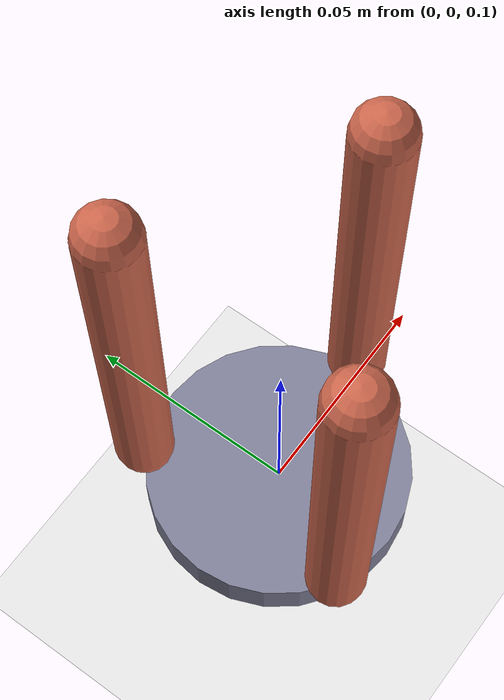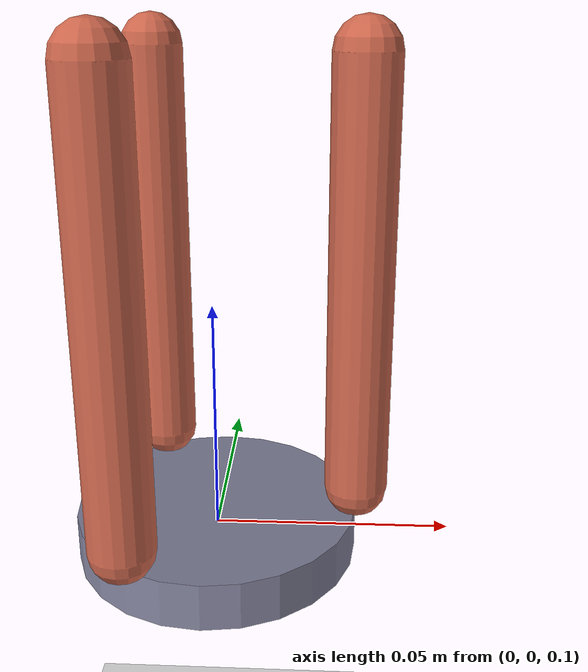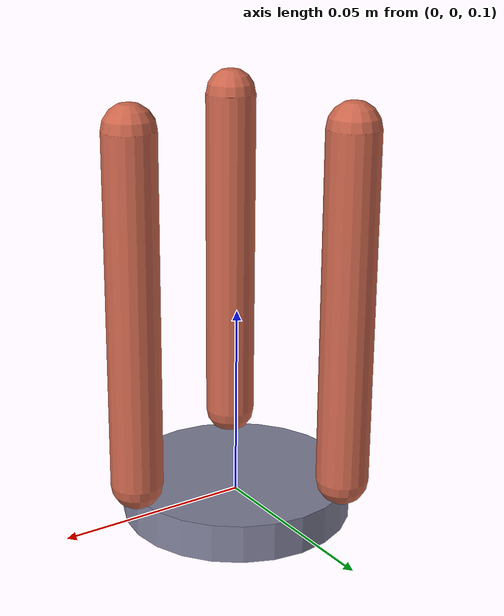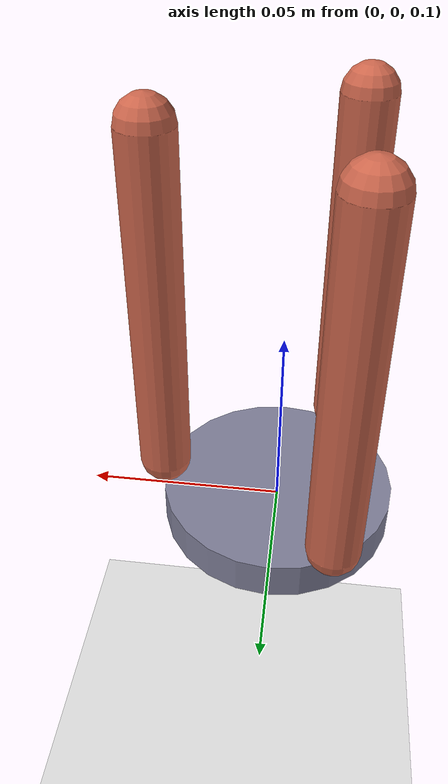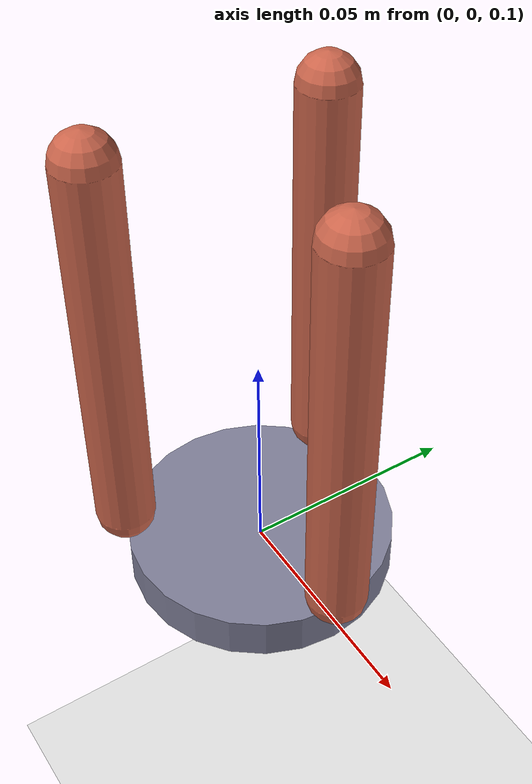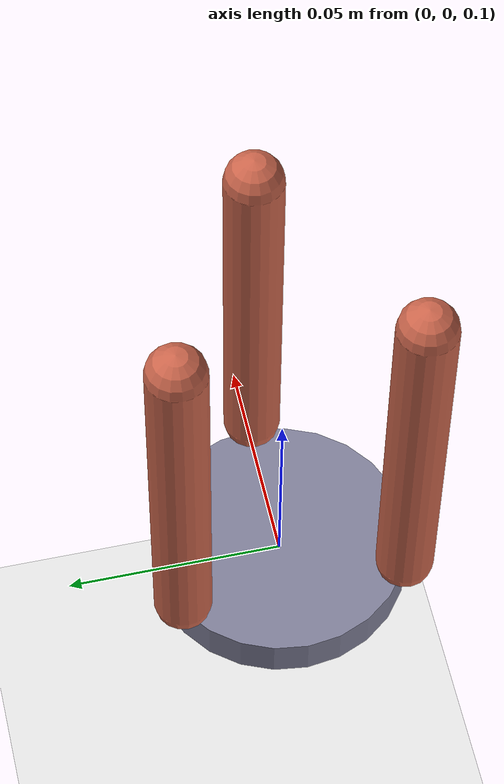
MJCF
<?xml version="1.0" encoding="utf-8"?>
<mujoco model="Wrap_Gripper_-_Dry_-_Soft_Objects">
    <option timestep="0.002" gravity="0 0 -9.81"/>

    <default>
        <joint damping="0.5" armature="0.01"/>
        <geom condim="4" friction="0.8 0.005 0.0001" rgba="0.8 0.4 0.3 1"/>
    </default>

    <worldbody>
        <light diffuse=".5 .5 .5" pos="0 0 3" dir="0 0 -1"/>
        <geom type="plane" size="1 1 0.1" rgba=".9 .9 .9 1"/>

        <!-- Palm -->
        <body name="palm" pos="0 0 0.1">
            <joint name="palm_free" type="free"/>
            <geom type="cylinder" size="0.0300 0.0050" rgba="0.5 0.5 0.6 1"/>

            <!-- Fingers -->

        <body name="finger_0" pos="0.0300 0.0000 0.0100">
            <joint name="finger_0_base" type="hinge" axis="0 1 0" range="-1.57 1.57"/>
            <geom type="capsule" size="0.0067" fromto="0 0 0 0 0 0.0900"/>

            <body name="finger_0_seg_1" pos="0 0 0.0180">
                <joint name="finger_0_joint_1" type="hinge" axis="0 1 0" range="-1.0 1.0"/>
                <geom type="capsule" size="0.0063" fromto="0 0 0 0 0 0.0180"/>

            <body name="finger_0_seg_2" pos="0 0 0.0180">
                <joint name="finger_0_joint_2" type="hinge" axis="0 1 0" range="-1.0 1.0"/>
                <geom type="capsule" size="0.0059" fromto="0 0 0 0 0 0.0180"/>

            <body name="finger_0_seg_3" pos="0 0 0.0180">
                <joint name="finger_0_joint_3" type="hinge" axis="0 1 0" range="-1.0 1.0"/>
                <geom type="capsule" size="0.0055" fromto="0 0 0 0 0 0.0180"/>

            <body name="finger_0_seg_4" pos="0 0 0.0180">
                <joint name="finger_0_joint_4" type="hinge" axis="0 1 0" range="-1.0 1.0"/>
                <geom type="capsule" size="0.0051" fromto="0 0 0 0 0 0.0180"/>
            </body>
            </body>
            </body>
            </body>
        </body>

        <body name="finger_1" pos="-0.0150 0.0260 0.0100">
            <joint name="finger_1_base" type="hinge" axis="0 1 0" range="-1.57 1.57"/>
            <geom type="capsule" size="0.0067" fromto="0 0 0 0 0 0.0900"/>

            <body name="finger_1_seg_1" pos="0 0 0.0180">
                <joint name="finger_1_joint_1" type="hinge" axis="0 1 0" range="-1.0 1.0"/>
                <geom type="capsule" size="0.0063" fromto="0 0 0 0 0 0.0180"/>

            <body name="finger_1_seg_2" pos="0 0 0.0180">
                <joint name="finger_1_joint_2" type="hinge" axis="0 1 0" range="-1.0 1.0"/>
                <geom type="capsule" size="0.0059" fromto="0 0 0 0 0 0.0180"/>

            <body name="finger_1_seg_3" pos="0 0 0.0180">
                <joint name="finger_1_joint_3" type="hinge" axis="0 1 0" range="-1.0 1.0"/>
                <geom type="capsule" size="0.0055" fromto="0 0 0 0 0 0.0180"/>

            <body name="finger_1_seg_4" pos="0 0 0.0180">
                <joint name="finger_1_joint_4" type="hinge" axis="0 1 0" range="-1.0 1.0"/>
                <geom type="capsule" size="0.0051" fromto="0 0 0 0 0 0.0180"/>
            </body>
            </body>
            </body>
            </body>
        </body>

        <body name="finger_2" pos="-0.0150 -0.0260 0.0100">
            <joint name="finger_2_base" type="hinge" axis="0 1 0" range="-1.57 1.57"/>
            <geom type="capsule" size="0.0067" fromto="0 0 0 0 0 0.0900"/>

            <body name="finger_2_seg_1" pos="0 0 0.0180">
                <joint name="finger_2_joint_1" type="hinge" axis="0 1 0" range="-1.0 1.0"/>
                <geom type="capsule" size="0.0063" fromto="0 0 0 0 0 0.0180"/>

            <body name="finger_2_seg_2" pos="0 0 0.0180">
                <joint name="finger_2_joint_2" type="hinge" axis="0 1 0" range="-1.0 1.0"/>
                <geom type="capsule" size="0.0059" fromto="0 0 0 0 0 0.0180"/>

            <body name="finger_2_seg_3" pos="0 0 0.0180">
                <joint name="finger_2_joint_3" type="hinge" axis="0 1 0" range="-1.0 1.0"/>
                <geom type="capsule" size="0.0055" fromto="0 0 0 0 0 0.0180"/>

            <body name="finger_2_seg_4" pos="0 0 0.0180">
                <joint name="finger_2_joint_4" type="hinge" axis="0 1 0" range="-1.0 1.0"/>
                <geom type="capsule" size="0.0051" fromto="0 0 0 0 0 0.0180"/>
            </body>
            </body>
            </body>
            </body>
        </body>

        </body>
    </worldbody>

    <actuator>
        <motor name="finger_0_motor" joint="finger_0_base" gear="1"/>
        <motor name="finger_1_motor" joint="finger_1_base" gear="1"/>
        <motor name="finger_2_motor" joint="finger_2_base" gear="1"/>

    </actuator>
</mujoco>
